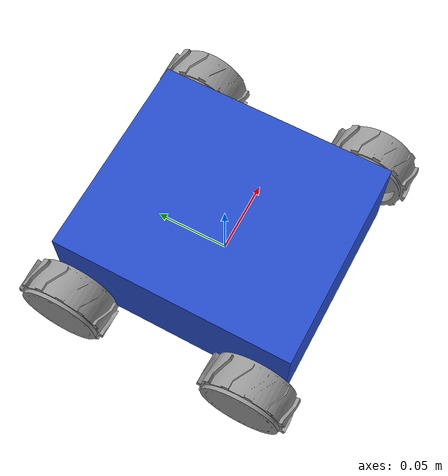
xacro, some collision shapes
<?xml version="1.0"?>
<robot xmlns:xacro="http://www.ros.org/wiki/xacro">

    <xacro:property name="joint_origin_y" value="0.063" />
    <xacro:property name="joint_origin_x" value="0.0875" />

    <link name="base_footprint" />

    <link name="base_link">
        <visual>
            <geometry>
                <mesh filename="package://ground_rover_description/meshes/Base_Assembly.dae"/>
            </geometry>
            <origin xyz="0 0 0.015" rpy="0 0 0" />
            <material name="blue" />
        </visual>
        <collision>
            <geometry>
                <box size="0.140 0.160 0.062" />
            </geometry>
            <origin xyz="0 0 0.006" rpy="0 0 0" />
        </collision>
        <inertial>
            <mass value="0.40442088" />
            <origin xyz="0 0 0.015" rpy="0 0 0" />
            <inertia ixx="0.00108528" ixy="-4.682e-5" ixz="-1.062e-5"
                    iyy="0.00092849" iyz="1.266e-5"
                    izz="0.00185279" />
        </inertial>
    </link>

    <xacro:macro name="wheel_link" params="prefix y" >
        <link name="${prefix}_wheel_link">
            <visual>
                <geometry>
                    <mesh filename="package://ground_rover_description/meshes/Wheel_Copy.dae" />
                </geometry>
                <origin xyz="0 0 0" rpy="0 0 ${y}" />
                <material name="grey" />
            </visual>
            <collision>
                <geometry>
                    <cylinder radius="0.03" length="0.035" />
                </geometry>
                <origin xyz="0 0 0" rpy="${pi / 2} 0 ${y}" />
            </collision>
            <inertial>
                <origin xyz="0 0 0" rpy="0 0 ${y}" />
                <mass value="0.0616546" />
                <inertia ixx="1.528e-5" ixy="-4.039e-11" ixz="9.797e-11"
                        iyy="2.527e-5" iyz="-2.637e-12"
                        izz="1.528e-5" />
            </inertial>
        </link>
    </xacro:macro>

    <xacro:wheel_link prefix="left_back" y="0" />
    <xacro:wheel_link prefix="left_front" y="0" />
    <xacro:wheel_link prefix="right_back" y="${pi}" />
    <xacro:wheel_link prefix="right_front" y="${pi}" />

    <joint name="base_joint" type="fixed" >
        <parent link="base_footprint" />
        <child link="base_link" />
        <origin xyz="0 0 ${joint_origin_x / 3.50}" rpy="0 0 0" />
    </joint>

    <joint name="base_left_front_wheel_joint" type="continuous">
        <parent link="base_link" />
        <child link="left_front_wheel_link" />
        <origin xyz="${-joint_origin_x} ${joint_origin_y} 0" rpy="0 0 ${pi / 2.0}" />
        <axis xyz="0 1 0" />
    </joint>

    <joint name="base_right_front_wheel_joint" type="continuous">
        <parent link="base_link" />
        <child link="right_front_wheel_link" />
        <origin xyz="${joint_origin_x} ${joint_origin_y} 0" rpy="0 0 ${pi / 2.0}" />
        <axis xyz="0 1 0" />
    </joint>

    <joint name="base_left_back_wheel_joint" type="continuous">
        <parent link="base_link" />
        <child link="left_back_wheel_link" />
        <origin xyz="${-joint_origin_x} ${-joint_origin_y} 0" rpy="0 0 ${pi / 2.0}" />
        <axis xyz="0 1 0" />
    </joint>

    <joint name="base_right_back_wheel_joint" type="continuous">
        <parent link="base_link" />
        <child link="right_back_wheel_link" />
        <origin xyz="${joint_origin_x} ${-joint_origin_y} 0" rpy="0 0 ${pi / 2.0}" />
        <axis xyz="0 1 0" />
    </joint>
</robot>
